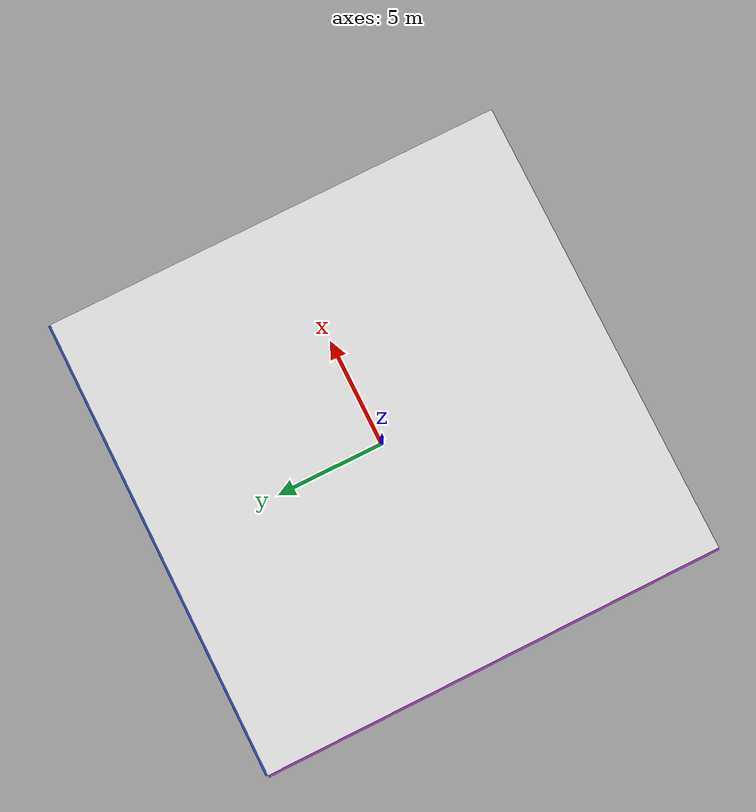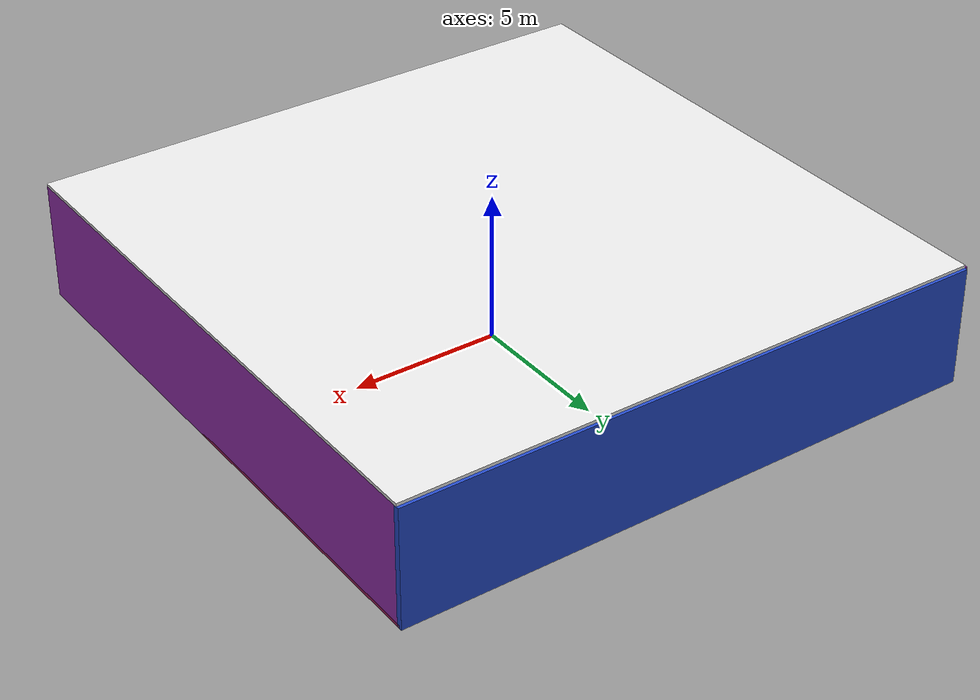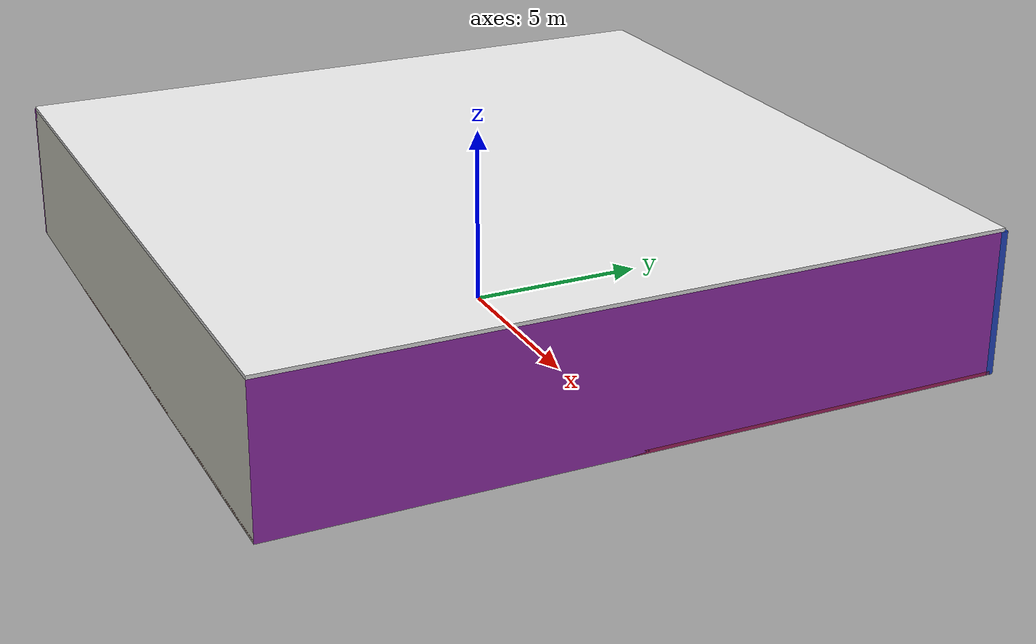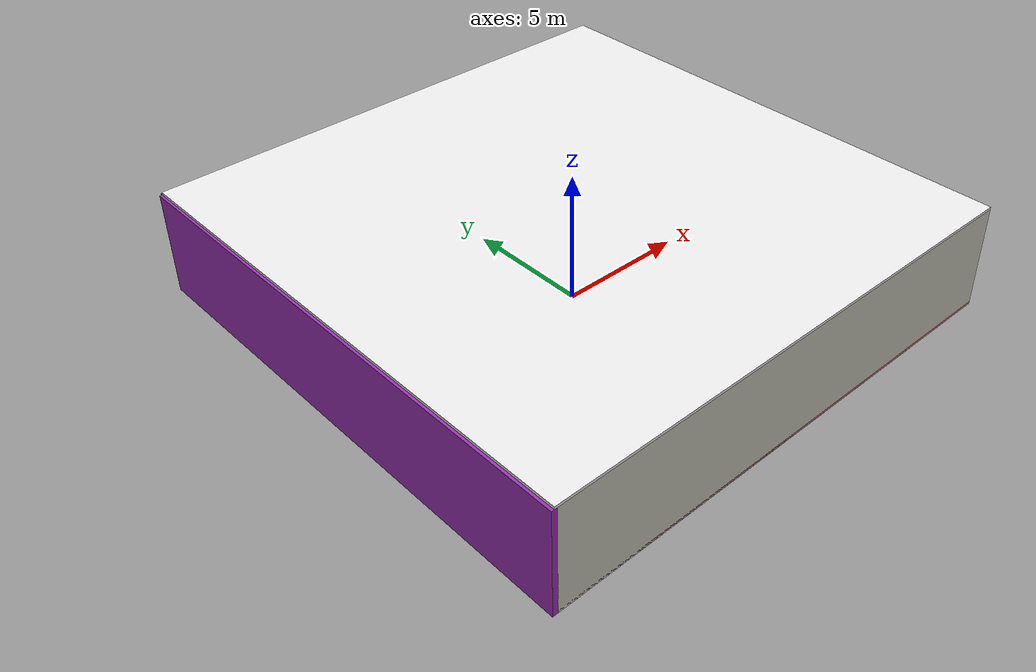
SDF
<sdf version="1.4">
 <world name="default">
  <physics type="ode">
   <max_step_size>0.001</max_step_size>
   <real_time_factor>1</real_time_factor>
   <real_time_update_rate>1000</real_time_update_rate>
   <gravity>0 0 -9.8</gravity>
  </physics>
  <scene><ambient>0.4 0.4 0.4 1</ambient><background>0.7 0.7 0.7 1</background><shadows>1</shadows></scene>
  <model name="Surrounding">
   <static>1</static>
   <link name="Ceiling">
    <collision name="Ceiling_Collision"><geometry><box><size>20 20 0.1</size></box></geometry></collision>
    <visual name="Ceiling_Visual">
     <geometry><box><size>20 20 0.1</size></box></geometry>
     <material>
      <script><uri>file://media/materials/scripts/gazebo.material</uri><name>Gazebo/WhiteGlow</name></script>
     </material>
    </visual>
    <pose>0 0 4.05 0 0 0</pose>
   </link>
   <link name="Wall_South">
    <collision name="Wall_South_Collision">
     <geometry><box><size>20 0 4</size></box></geometry>
     <pose>0 0 2 0 -0 0</pose>
    </collision>
    <visual name="Wall_South_Visual">
     <pose>0 0 2 0 -0 0</pose>
     <geometry><box><size>20 0 4</size></box></geometry>
     <material>
      <script><uri>file://media/materials/scripts/gazebo.material</uri><name>Gazebo/PaintedWall</name></script>
     </material>
    </visual>
    <velocity_decay><linear>0</linear><angular>0</angular></velocity_decay>
    <pose>0 -10 0 0 -0 0</pose>
   </link>
   <link name="Wall_East">
    <collision name="Wall_21_Collision">
     <geometry><box><size>20 0 4</size></box></geometry>
     <pose>0 0 2 0 -0 0</pose>
    </collision>
    <visual name="Wall_21_Visual">
     <pose>0 0 2 0 -0 0</pose>
     <geometry><box><size>20 0 4</size></box></geometry>
     <material>
      <script><uri>file://media/materials/scripts/gazebo.material</uri><name>Gazebo/Purple</name></script>
     </material>
    </visual>
    <velocity_decay><linear>0</linear><angular>0</angular></velocity_decay>
    <pose>10 0 0 0 -0 1.5708</pose>
   </link>
   <link name="Wall_North">
    <collision name="Wall_22_Collision">
     <geometry><box><size>20 0.2 4</size></box></geometry>
     <pose>0 0 2 0 -0 0</pose>
    </collision>
    <visual name="Wall_22_Visual">
     <pose>0 0 2 0 -0 0</pose>
     <geometry><box><size>20 0.2 4</size></box></geometry>
     <material>
      <script><uri>file://media/materials/scripts/gazebo.material</uri><name>Gazebo/BlueLaser</name></script>
     </material>
    </visual>
    <velocity_decay><linear>0</linear><angular>0</angular></velocity_decay>
    <pose>0 10 0 0 -0 0</pose>
   </link>
   <link name="Wall_West">
    <collision name="Wall_23_Collision">
     <geometry><box><size>20 0.2 4</size></box></geometry>
     <pose>0 0 2 0 -0 0</pose>
    </collision>
    <visual name="Wall_23_Visual">
     <pose>0 0 2 0 -0 0</pose>
     <geometry><box><size>20 0.2 4</size></box></geometry>
     <material>
      <script><uri>file://media/materials/scripts/gazebo.material</uri><name>Gazebo/PurpleGlow</name></script>
     </material>
    </visual>
    <velocity_decay><linear>0</linear><angular>0</angular></velocity_decay>
    <pose>-10 0 0 0 0 -1.5708</pose>
   </link>
   <link name="Ground_link">
    <collision name="collision">
     <pose>0 0 .05 0 -0 0</pose>
     <geometry><box><size>20 20 0.1</size></box></geometry>
    </collision>
    <visual name="visual">
     <pose>0 0 .05 0 -0 0</pose>
     <geometry><box><size>20 20 0.1</size></box></geometry>
     <material>
      <script><uri>file://media/materials/scripts/gazebo.material</uri><name>Gazebo/RedTransparent</name></script>
     </material>
    </visual>
   </link>
   <static>1</static>
  </model>
  <spherical_coordinates>
   <surface_model>EARTH_WGS84</surface_model>
   <latitude_deg>0</latitude_deg>
   <longitude_deg>0</longitude_deg>
   <elevation>0</elevation>
   <heading_deg>0</heading_deg>
  </spherical_coordinates>
  <light name="lightball_0" type="diffuse">
   <diffuse>0.8 0.8 0.8 1</diffuse>
   <specular>0.2 0.2 0.2 1</specular>
   <attenuation>
    <range>100</range>
    <constant>0.7</constant>
    <linear>0.01</linear>
    <quadratic>0.001</quadratic>
   </attenuation>
   <direction>-0.5 0.1 -0.9</direction>
   <pose>-4.12209060922 6.28314614105 3.45228186564 0 0 0</pose>
  </light>
  <light name="lightball_1" type="diffuse">
   <diffuse>0.8 0.8 0.8 1</diffuse>
   <specular>0.2 0.2 0.2 1</specular>
   <attenuation>
    <range>100</range>
    <constant>0.7</constant>
    <linear>0.01</linear>
    <quadratic>0.001</quadratic>
   </attenuation>
   <direction>-0.5 0.1 -0.9</direction>
   <pose>-2.99849109906 0.971344042065 0.883805075679 0 0 0</pose>
  </light>
  <light name="lightball_2" type="diffuse">
   <diffuse>0.8 0.8 0.8 1</diffuse>
   <specular>0.2 0.2 0.2 1</specular>
   <attenuation>
    <range>100</range>
    <constant>0.7</constant>
    <linear>0.01</linear>
    <quadratic>0.001</quadratic>
   </attenuation>
   <direction>-0.5 0.1 -0.9</direction>
   <pose>-1.92499422354 0.942689763138 2.47204994058 0 0 0</pose>
  </light>
  <light name="lightball_3" type="diffuse">
   <diffuse>0.8 0.8 0.8 1</diffuse>
   <specular>0.2 0.2 0.2 1</specular>
   <attenuation>
    <range>100</range>
    <constant>0.7</constant>
    <linear>0.01</linear>
    <quadratic>0.001</quadratic>
   </attenuation>
   <direction>-0.5 0.1 -0.9</direction>
   <pose>4.8533046527 -9.87196391851 0.612777175441 0 0 0</pose>
  </light>
  <light name="lightball_4" type="diffuse">
   <diffuse>0.8 0.8 0.8 1</diffuse>
   <specular>0.2 0.2 0.2 1</specular>
   <attenuation>
    <range>100</range>
    <constant>0.7</constant>
    <linear>0.01</linear>
    <quadratic>0.001</quadratic>
   </attenuation>
   <direction>-0.5 0.1 -0.9</direction>
   <pose>0.448610149199 -5.30985669925 2.71083133943 0 0 0</pose>
  </light>
  <light name="lightball_5" type="diffuse">
   <diffuse>0.8 0.8 0.8 1</diffuse>
   <specular>0.2 0.2 0.2 1</specular>
   <attenuation>
    <range>100</range>
    <constant>0.7</constant>
    <linear>0.01</linear>
    <quadratic>0.001</quadratic>
   </attenuation>
   <direction>-0.5 0.1 -0.9</direction>
   <pose>-0.0414328326406 -4.3512743738 2.12841397991 0 0 0</pose>
  </light>
  <light name="lightball_6" type="diffuse">
   <diffuse>0.8 0.8 0.8 1</diffuse>
   <specular>0.2 0.2 0.2 1</specular>
   <attenuation>
    <range>100</range>
    <constant>0.7</constant>
    <linear>0.01</linear>
    <quadratic>0.001</quadratic>
   </attenuation>
   <direction>-0.5 0.1 -0.9</direction>
   <pose>-3.85115166617 2.71599250955 3.0085938273 0 0 0</pose>
  </light>
  <include><uri>model://cabinet</uri><pose>-7.35993501978 1.07176562168 0 0 0 1.51671829192</pose></include>
  <include><uri>model://table</uri><pose>-7.57013067112 6.74965400055 0 0 0 0.490236612149</pose></include>
  <include>
   <uri>model://robocup_3Dsim_goal</uri>
   <pose>-0.87167369551 7.72209569498 0 0 0 2.58824426869</pose>
  </include>
  <include>
   <uri>model://construction_cone</uri>
   <pose>2.21961646673 -4.24682997227 0 0 0 1.30367042749</pose>
  </include>
  <include><uri>model://cabinet</uri><pose>5.21602168486 -0.833956609421 0 0 0 2.25637724785</pose></include>
  <include><uri>model://cabinet</uri><pose>4.1334729966 1.89287259657 0 0 0 0.38977524625</pose></include>
  <include>
   <uri>model://textured_shapes</uri>
   <pose>4.77543621021 8.09330151424 0 0 0 1.28148493836</pose>
  </include>
  <include><uri>model://table</uri><pose>7.10569332127 3.85932682869 0 0 0 3.01242921275</pose></include>
  <include>
   <uri>model://robocup_3Dsim_goal</uri>
   <pose>7.48776957419 8.2572174643 0 0 0 1.4009169955</pose>
  </include>
 </world>
</sdf>

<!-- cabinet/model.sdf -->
<sdf version="1.5">
  <model name="cabinet">
    <static>true</static>
    <link name="cabinet_bottom_plate">
      <inertial>
        <pose>0 0 -1 0 0 0</pose>
        <inertia>
          <ixx>2.050000</ixx>
          <ixy>0</ixy>
          <ixz>0</ixz>
          <iyy>2.050000</iyy>
          <iyz>0</iyz>
          <izz>2.050000</izz>
        </inertia>
        <mass>25.000000</mass>
      </inertial>
      <collision name="cabinet_bottom_plate_geom">
        <pose>0 0 0.010000 0 0 0</pose>
        <geometry>
          <box>
            <size>0.450000 0.450000 0.020000</size>
          </box>
        </geometry>
      </collision>
      <visual name="cabinet_bottom_plate_geom_visual">
        <pose>0 0 0.010000 0 0 0</pose>
        <geometry>
          <box>
            <size>0.450000 0.450000 0.020000</size>
          </box>
        </geometry>
        <material>
          <script>
            <uri>model://media/materials/scripts/gazebo.material</uri>
            <name>Gazebo/Wood</name>
          </script>
        </material>
      </visual>
      <collision name="cabinet_bottom_plate_geom_cabinet_back_plate">
        <pose>0.235000 0 0.510000 0 0 0</pose>
        <geometry>
          <box>
            <size>0.020000 0.450000 1.020000</size>
          </box>
        </geometry>
      </collision>
      <visual name="cabinet_bottom_plate_geom_cabinet_back_plate_visual">
        <pose>0.235000 0 0.510000 0 0 0</pose>
        <geometry>
          <box>
            <size>0.020000 0.450000 1.020000</size>
          </box>
        </geometry>
        <material>
          <script>
            <uri>model://media/materials/scripts/gazebo.material</uri>
            <name>Gazebo/Wood</name>
          </script>
        </material>
      </visual>
      <collision name="cabinet_bottom_plate_geom_cabinet_left_plate">
        <pose>0 0.235000 0.510000 0 0 0</pose>
        <geometry>
          <box>
            <size>0.450000 0.020000 1.020000</size>
          </box>
        </geometry>
      </collision>
      <visual name="cabinet_bottom_plate_geom_cabinet_left_plate_visual">
        <pose>0 0.235000 0.510000 0 0 0</pose>
        <geometry>
          <box>
            <size>0.450000 0.020000 1.020000</size>
          </box>
        </geometry>
        <material>
          <script>
            <uri>model://media/materials/scripts/gazebo.material</uri>
            <name>Gazebo/Wood</name>
          </script>
        </material>
      </visual>
      <collision name="cabinet_bottom_plate_geom_cabinet_middle_plate">
        <pose>0 0 0.510000 0 0 0</pose>
        <geometry>
          <box>
            <size>0.450000 0.450000 0.020000</size>
          </box>
        </geometry>
      </collision>
      <visual name="cabinet_bottom_plate_geom_cabinet_middle_plate_visual">
        <pose>0 0 0.510000 0 0 0</pose>
        <geometry>
          <box>
            <size>0.450000 0.450000 0.020000</size>
          </box>
        </geometry>
        <material>
          <script>
            <uri>model://media/materials/scripts/gazebo.material</uri>
            <name>Gazebo/Wood</name>
          </script>
        </material>
      </visual>
      <collision name="cabinet_bottom_plate_geom_cabinet_right_plate">
        <pose>0 -0.235000 0.510000 0 0 0</pose>
        <geometry>
          <box>
            <size>0.450000 0.020000 1.020000</size>
          </box>
        </geometry>
      </collision>
      <visual name="cabinet_bottom_plate_geom_cabinet_right_plate_visual">
        <pose>0 -0.235000 0.510000 0 0 0</pose>
        <geometry>
          <box>
            <size>0.450000 0.020000 1.020000</size>
          </box>
        </geometry>
        <material>
          <script>
            <uri>model://media/materials/scripts/gazebo.material</uri>
            <name>Gazebo/Wood</name>
          </script>
        </material>
      </visual>
      <collision name="cabinet_bottom_plate_geom_cabinet_top_plate">
        <pose>0 0 1.010000 0 0 0</pose>
        <geometry>
          <box>
            <size>0.450000 0.450000 0.020000</size>
          </box>
        </geometry>
      </collision>
      <visual name="cabinet_bottom_plate_geom_cabinet_top_plate_visual">
        <pose>0 0 1.010000 0 0 0</pose>
        <geometry>
          <box>
            <size>0.450000 0.450000 0.020000</size>
          </box>
        </geometry>
        <material>
          <script>
            <uri>model://media/materials/scripts/gazebo.material</uri>
            <name>Gazebo/Wood</name>
          </script>
        </material>
      </visual>
    </link>
  </model>
</sdf>

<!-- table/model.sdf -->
<sdf version="1.5">
  <model name="table">
    <static>true</static>
    <link name="link">
      <collision name="surface">
        <pose>0 0 1.0 0 0 0</pose>
        <geometry>
          <box>
            <size>1.5 0.8 0.03</size>
          </box>
        </geometry>
        <surface>
          <friction>
            <ode>
              <mu>0.6</mu>
              <mu2>0.6</mu2>
            </ode>
          </friction>
        </surface>
      </collision>
      <visual name="visual1">
        <pose>0 0 1.0 0 0 0</pose>
        <geometry>
          <box>
            <size>1.5 0.8 0.03</size>
          </box>
        </geometry>
        <material>
          <script>
            <uri>model://media/materials/scripts/gazebo.material</uri>
            <name>Gazebo/Wood</name>
          </script>
        </material>
      </visual>
      <collision name="front_left_leg">
        <pose>0.68 0.38 0.5 0 0 0</pose>
        <geometry>
          <cylinder>
            <radius>0.02</radius>
            <length>1.0</length>
          </cylinder>
        </geometry>
      </collision>
      <visual name="front_left_leg">
        <pose>0.68 0.38 0.5 0 0 0</pose>
        <geometry>
          <cylinder>
            <radius>0.02</radius>
            <length>1.0</length>
          </cylinder>
        </geometry>
        <material>
          <script>
            <uri>model://media/materials/scripts/gazebo.material</uri>
            <name>Gazebo/Grey</name>
          </script>
        </material>
      </visual>
      <collision name="front_right_leg">
        <pose>0.68 -0.38 0.5 0 0 0</pose>
        <geometry>
          <cylinder>
            <radius>0.02</radius>
            <length>1.0</length>
          </cylinder>
        </geometry>
      </collision>
      <visual name="front_right_leg">
        <pose>0.68 -0.38 0.5 0 0 0</pose>
        <geometry>
          <cylinder>
            <radius>0.02</radius>
            <length>1.0</length>
          </cylinder>
        </geometry>
        <material>
          <script>
            <uri>model://media/materials/scripts/gazebo.material</uri>
            <name>Gazebo/Grey</name>
          </script>
        </material>
      </visual>
      <collision name="back_right_leg">
        <pose>-0.68 -0.38 0.5 0 0 0</pose>
        <geometry>
          <cylinder>
            <radius>0.02</radius>
            <length>1.0</length>
          </cylinder>
        </geometry>
      </collision>
      <visual name="back_right_leg">
        <pose>-0.68 -0.38 0.5 0 0 0</pose>
        <geometry>
          <cylinder>
            <radius>0.02</radius>
            <length>1.0</length>
          </cylinder>
        </geometry>
        <material>
          <script>
            <uri>model://media/materials/scripts/gazebo.material</uri>
            <name>Gazebo/Grey</name>
          </script>
        </material>
      </visual>
      <collision name="back_left_leg">
        <pose>-0.68 0.38 0.5 0 0 0</pose>
        <geometry>
          <cylinder>
            <radius>0.02</radius>
            <length>1.0</length>
          </cylinder>
        </geometry>
      </collision>
      <visual name="back_left_leg">
        <pose>-0.68 0.38 0.5 0 0 0</pose>
        <geometry>
          <cylinder>
            <radius>0.02</radius>
            <length>1.0</length>
          </cylinder>
        </geometry>
        <material>
          <script>
            <uri>model://media/materials/scripts/gazebo.material</uri>
            <name>Gazebo/Grey</name>
          </script>
        </material>
      </visual>
    </link>
  </model>
</sdf>

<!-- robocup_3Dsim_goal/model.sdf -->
<sdf version="1.5">
  <model name="robocup_3d_goal">
    <static>true</static>
    <link name="left_post">
      <pose>0 1.05 0.45 0 0 0</pose>
      <collision name="collision">
        <geometry>
          <cylinder>
            <radius>0.05</radius>
            <length>0.9</length>
          </cylinder>
        </geometry>
      </collision>
      <visual name="visual">
        <geometry>
          <cylinder>
            <radius>0.05</radius>
            <length>0.9</length>
          </cylinder>
        </geometry>
        <material>
          <script>
            <uri>file://media/materials/scripts/gazebo.material</uri>
            <name>Gazebo/ZincYellow</name>
          </script>
        </material>
      </visual>
    </link>
    <link name="left_support_horiz_lower">
      <pose>0.30 1.05 0.01 0 0 0</pose>
      <collision name="collision">
        <geometry>
          <box>
            <size>0.50 0.02 0.02</size>
          </box>
        </geometry>
      </collision>
      <visual name="visual">
        <geometry>
          <box>
            <size>0.50 0.02 0.02</size>
          </box>
        </geometry>
        <material>
          <script>
            <uri>file://media/materials/scripts/gazebo.material</uri>
            <name>Gazebo/White</name>
          </script>
        </material>
      </visual>
    </link>
    <link name="left_support_horiz_upper">
      <pose>0.30 1.05 0.79 0 0 0</pose>
      <collision name="collision">
        <geometry>
          <box>
            <size>0.50 0.02 0.02</size>
          </box>
        </geometry>
      </collision>
      <visual name="visual">
        <geometry>
          <box>
            <size>0.50 0.02 0.02</size>
          </box>
        </geometry>
        <material>
          <script>
            <uri>file://media/materials/scripts/gazebo.material</uri>
            <name>Gazebo/White</name>
          </script>
        </material>
      </visual>
    </link>
    <link name="left_support_vertical">
      <pose>0.56 1.05 0.4 0 1.5708 0</pose>
      <collision name="collision">
        <geometry>
          <box>
            <size>0.80 0.02 0.02</size>
          </box>
        </geometry>
      </collision>
      <visual name="visual">
        <geometry>
          <box>
            <size>0.80 0.02 0.02</size>
          </box>
        </geometry>
        <material>
          <script>
            <uri>file://media/materials/scripts/gazebo.material</uri>
            <name>Gazebo/White</name>
          </script>
        </material>
      </visual>
    </link>
    <link name="right_support_horiz_lower">
      <pose>0.30 -1.05 0.01 0 0 0</pose>
      <collision name="collision">
        <geometry>
          <box>
            <size>0.50 0.02 0.02</size>
          </box>
        </geometry>
      </collision>
      <visual name="visual">
        <geometry>
          <box>
            <size>0.50 0.02 0.02</size>
          </box>
        </geometry>
        <material>
          <script>
            <uri>file://media/materials/scripts/gazebo.material</uri>
            <name>Gazebo/White</name>
          </script>
        </material>
      </visual>
    </link>
    <link name="right_support_horiz_upper">
      <pose>0.30 -1.05 0.79 0 0 0</pose>
      <collision name="collision">
        <geometry>
          <box>
            <size>0.50 0.02 0.02</size>
          </box>
        </geometry>
      </collision>
      <visual name="visual">
        <geometry>
          <box>
            <size>0.50 0.02 0.02</size>
          </box>
        </geometry>
        <material>
          <script>
            <uri>file://media/materials/scripts/gazebo.material</uri>
            <name>Gazebo/White</name>
          </script>
        </material>
      </visual>
    </link>
    <link name="right_support_vertical">
      <pose>0.56 -1.05 0.4 0 1.5708 0</pose>
      <collision name="collision">
        <geometry>
          <box>
            <size>0.80 0.02 0.02</size>
          </box>
        </geometry>
      </collision>
      <visual name="visual">
        <geometry>
          <box>
            <size>0.80 0.02 0.02</size>
          </box>
        </geometry>
        <material>
          <script>
            <uri>file://media/materials/scripts/gazebo.material</uri>
            <name>Gazebo/White</name>
          </script>
        </material>
      </visual>
    </link>
    <link name="center_support_horiz_lower">
      <pose>0.56 0 0.01 0 1.5708 0</pose>
      <collision name="collision">
        <geometry>
          <box>
            <size>0.02 2.08 0.02</size>
          </box>
        </geometry>
      </collision>
      <visual name="visual">
        <geometry>
          <box>
            <size>0.02 2.08 0.02</size>
          </box>
        </geometry>
        <material>
          <script>
            <uri>file://media/materials/scripts/gazebo.material</uri>
            <name>Gazebo/White</name>
          </script>
        </material>
      </visual>
    </link>
    <link name="center_support_horiz_upper">
      <pose>0.56 0 0.79 0 1.5708 0</pose>
      <collision name="collision">
        <geometry>
          <box>
            <size>0.02 2.08 0.02</size>
          </box>
        </geometry>
      </collision>
      <visual name="visual">
        <geometry>
          <box>
            <size>0.02 2.08 0.02</size>
          </box>
        </geometry>
        <material>
          <script>
            <uri>file://media/materials/scripts/gazebo.material</uri>
            <name>Gazebo/White</name>
          </script>
        </material>
      </visual>
    </link>
    <link name="right_post">
      <pose>0 -1.05 0.45 0 0 0</pose>
      <collision name="collision">
        <geometry>
          <cylinder>
            <radius>0.05</radius>
            <length>0.9</length>
          </cylinder>
        </geometry>
      </collision>
      <visual name="visual">
        <geometry>
          <cylinder>
            <radius>0.05</radius>
            <length>0.9</length>
          </cylinder>
        </geometry>
        <material>
          <script>
            <uri>file://media/materials/scripts/gazebo.material</uri>
            <name>Gazebo/ZincYellow</name>
          </script>
        </material>
      </visual>
    </link>
    <link name="crossbar">
      <pose>0 0 0.85 1.57 1.57 0</pose>
      <collision name="collision">
        <geometry>
          <cylinder>
            <radius>0.05</radius>
            <length>2.0</length>
          </cylinder>
        </geometry>
      </collision>
      <visual name="visual">
        <geometry>
          <cylinder>
            <radius>0.05</radius>
            <length>2.0</length>
          </cylinder>
        </geometry>
        <material>
          <script>
            <uri>file://media/materials/scripts/gazebo.material</uri>
            <name>Gazebo/ZincYellow</name>
          </script>
        </material>
      </visual>
    </link>
    <link name="center_net">
      <pose>0.56 0 0.40 0 0 0</pose>
      <collision name="collision">
        <geometry>
          <box>
            <size>0.01 2.1 0.80</size>
          </box>
        </geometry>
      </collision>
      <visual name="visual">
        <geometry>
          <box>
            <size>0.01 2.1 0.80</size>
          </box>
        </geometry>
        <material>
          <script>
            <uri>model://../model_source/models/robocup09_spl_field/materials/scripts/</uri>
            <uri>model://../model_source/models/robocup09_spl_field/materials/textures/</uri>
            <name>RoboCup/Net</name>
          </script>
        </material>
      </visual>
    </link>
    <link name="left_net">
      <pose>0.30 1.05 0.40 0 0 0</pose>
      <collision name="collision">
        <geometry>
          <box>
            <size>0.50 0.01 0.76</size>
          </box>
        </geometry>
      </collision>
      <visual name="visual">
        <geometry>
          <box>
            <size>0.50 0.01 0.76</size>
          </box>
        </geometry>
        <material>
          <script>
            <uri>model://../model_source/models/robocup09_spl_field/materials/scripts/</uri>
            <uri>model://../model_source/models/robocup09_spl_field/materials/textures/</uri>
            <name>RoboCup/Net</name>
          </script>
        </material>
      </visual>
    </link>
    <link name="right_net">
      <pose>0.30 -1.05 0.40 0 0 0</pose>
      <collision name="collision">
        <geometry>
          <box>
            <size>0.50 0.01 0.76</size>
          </box>
        </geometry>
      </collision>
      <visual name="visual">
        <geometry>
          <box>
            <size>0.50 0.01 0.76</size>
          </box>
        </geometry>
        <material>
          <script>
            <uri>model://../model_source/models/robocup09_spl_field/materials/scripts/</uri>
            <uri>model://../model_source/models/robocup09_spl_field/materials/textures/</uri>
            <name>RoboCup/Net</name>
          </script>
        </material>
      </visual>
    </link>
  </model>
</sdf>

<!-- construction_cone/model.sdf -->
<sdf version="1.5">
  <model name="Construction Cone">
    <link name="link">
      <collision name="collision">
        <geometry>
          <mesh>
            <scale>10 10 10</scale>
            <uri>file://isr-testbed/construction_cone/meshes/construction_cone.dae</uri>
          </mesh>
        </geometry>
      </collision>
      <visual name="visual">
        <geometry>
          <mesh>
            <scale>10 10 10</scale>
            <uri>file://isr-testbed/construction_cone/meshes/construction_cone.dae</uri>
          </mesh>
        </geometry>
      </visual>
    </link>
  </model>
</sdf>

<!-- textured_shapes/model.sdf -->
<sdf version="1.6">
  <model name="textured_shapes">
    <pose>0 0 0.5 0 0 0</pose>
    <link name="box">
      <pose>0 -1.5 0 0 0 0</pose>
      <collision name="collision">
        <geometry>
          <box>
            <size>1 1 1</size>
          </box>
        </geometry>
      </collision>
      <visual name="visual">
        <geometry>
          <box>
            <size>1 1 1</size>
          </box>
        </geometry>
        <material>
          <script>
            <uri>model://../model_source/models/textured_shapes/materials/scripts</uri>
            <uri>model://../model_source/models/textured_shapes/materials/textures</uri>
            <name>TexturedShape/Squares</name>
          </script>
        </material>
      </visual>
    </link>
    <link name="sphere">
      <collision name="collision">
        <geometry>
          <sphere>
            <radius>0.5</radius>
          </sphere>
        </geometry>
      </collision>
      <visual name="visual">
        <geometry>
          <sphere>
            <radius>0.5</radius>
          </sphere>
        </geometry>
        <material>
          <script>
            <uri>model://../model_source/models/textured_shapes/materials/scripts</uri>
            <uri>model://../model_source/models/textured_shapes/materials/textures</uri>
            <name>TexturedShape/Squares</name>
          </script>
        </material>
      </visual>
    </link>
    <link name="cylinder">
      <pose>0 1.5 0 0 0 0</pose>
      <collision name="collision">
        <geometry>
          <cylinder>
            <radius>0.5</radius>
            <length>1</length>
          </cylinder>
        </geometry>
      </collision>
      <visual name="visual">
        <geometry>
          <cylinder>
            <radius>0.5</radius>
            <length>1</length>
          </cylinder>
        </geometry>
        <material>
          <script>
            <uri>model://../model_source/models/textured_shapes/materials/scripts</uri>
            <uri>model://../model_source/models/textured_shapes/materials/textures</uri>
            <name>TexturedShape/Squares</name>
          </script>
        </material>
      </visual>
    </link>
  </model>
</sdf>
